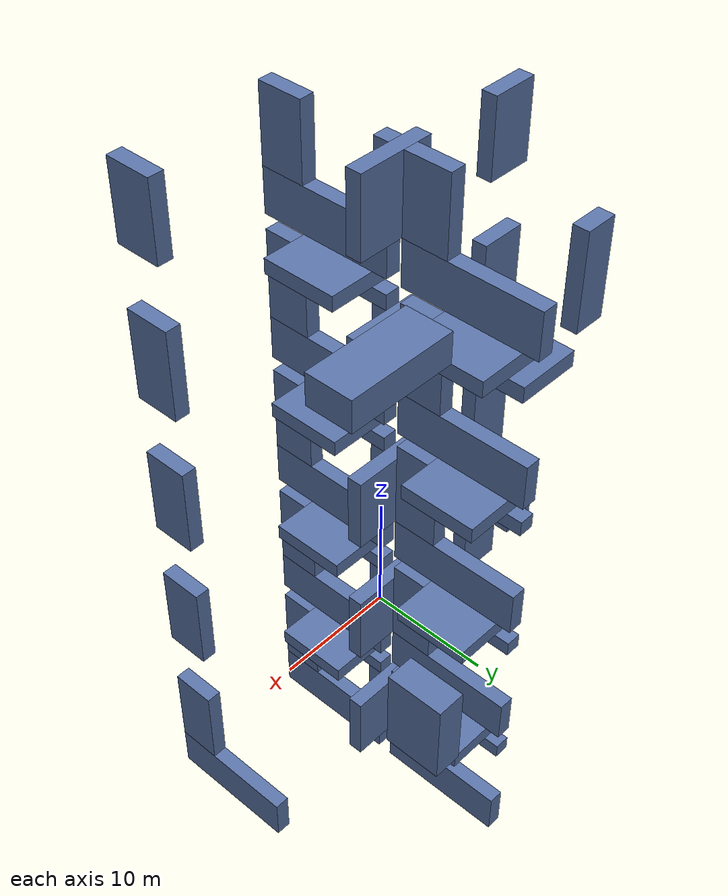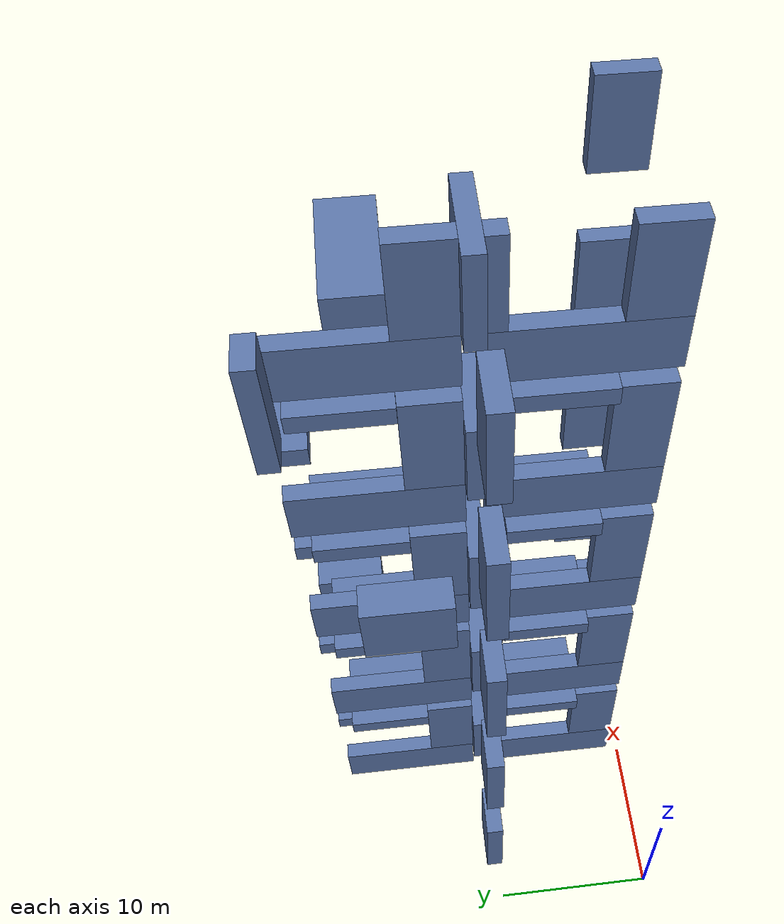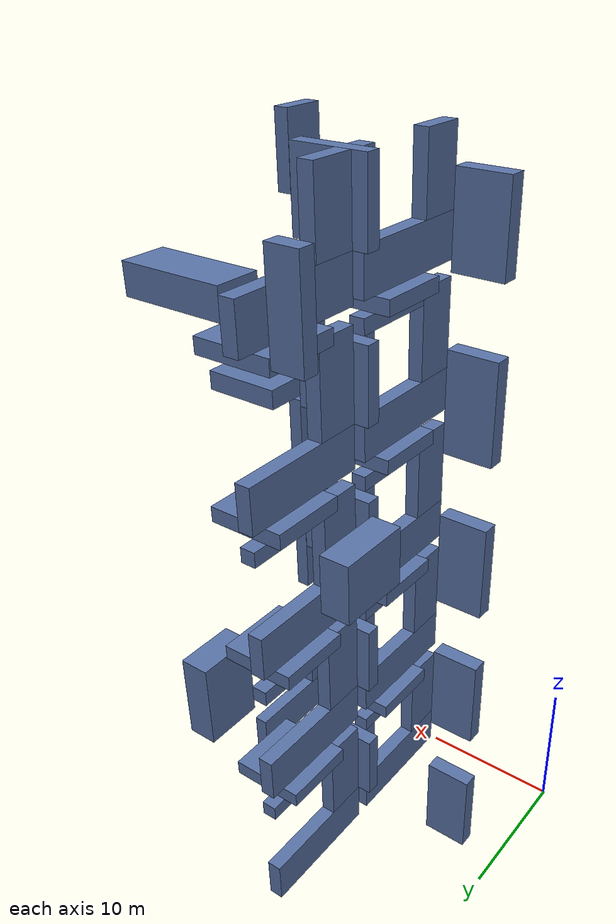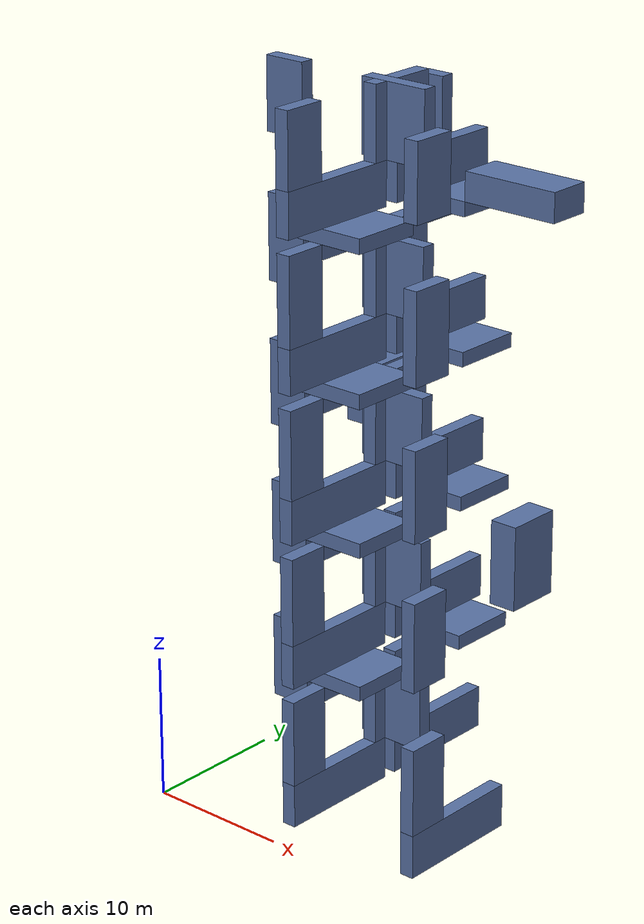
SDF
<sdf version="1.7">
 <world name="default">
  <model name="racer_env">
   <static>1</static>
   <link name="b13">
    <pose>2.500 10.500 7.000 0 0 0</pose>
    <collision name="c"><geometry><box><size>3.000 1.000 6.000</size></box></geometry></collision>
    <visual name="v">
     <geometry><box><size>3.000 1.000 6.000</size></box></geometry>
     <material><ambient>0.30 0.38 0.55 1</ambient><diffuse>0.35 0.45 0.65 1</diffuse></material>
    </visual>
   </link>
   <link name="b15">
    <pose>2.500 10.500 17.000 0 0 0</pose>
    <collision name="c"><geometry><box><size>3.000 1.000 6.000</size></box></geometry></collision>
    <visual name="v">
     <geometry><box><size>3.000 1.000 6.000</size></box></geometry>
     <material><ambient>0.30 0.38 0.55 1</ambient><diffuse>0.35 0.45 0.65 1</diffuse></material>
    </visual>
   </link>
   <link name="b17">
    <pose>2.500 10.500 27.000 0 0 0</pose>
    <collision name="c"><geometry><box><size>3.000 1.000 6.000</size></box></geometry></collision>
    <visual name="v">
     <geometry><box><size>3.000 1.000 6.000</size></box></geometry>
     <material><ambient>0.30 0.38 0.55 1</ambient><diffuse>0.35 0.45 0.65 1</diffuse></material>
    </visual>
   </link>
   <link name="b19">
    <pose>2.500 10.500 37.000 0 0 0</pose>
    <collision name="c"><geometry><box><size>3.000 1.000 6.000</size></box></geometry></collision>
    <visual name="v">
     <geometry><box><size>3.000 1.000 6.000</size></box></geometry>
     <material><ambient>0.30 0.38 0.55 1</ambient><diffuse>0.35 0.45 0.65 1</diffuse></material>
    </visual>
   </link>
   <link name="b21">
    <pose>2.500 10.500 46.500 0 0 0</pose>
    <collision name="c"><geometry><box><size>3.000 1.000 5.000</size></box></geometry></collision>
    <visual name="v">
     <geometry><box><size>3.000 1.000 5.000</size></box></geometry>
     <material><ambient>0.30 0.38 0.55 1</ambient><diffuse>0.35 0.45 0.65 1</diffuse></material>
    </visual>
   </link>
   <link name="b96">
    <pose>7.000 14.500 27.000 0 0 0</pose>
    <collision name="c"><geometry><box><size>2.000 5.000 4.000</size></box></geometry></collision>
    <visual name="v">
     <geometry><box><size>2.000 5.000 4.000</size></box></geometry>
     <material><ambient>0.30 0.38 0.55 1</ambient><diffuse>0.35 0.45 0.65 1</diffuse></material>
    </visual>
   </link>
   <link name="b97">
    <pose>7.000 19.500 44.000 0 0 0</pose>
    <collision name="c"><geometry><box><size>2.000 1.000 6.000</size></box></geometry></collision>
    <visual name="v">
     <geometry><box><size>2.000 1.000 6.000</size></box></geometry>
     <material><ambient>0.30 0.38 0.55 1</ambient><diffuse>0.35 0.45 0.65 1</diffuse></material>
    </visual>
   </link>
   <link name="b104">
    <pose>10.000 19.000 39.500 0 0 0</pose>
    <collision name="c"><geometry><box><size>4.000 2.000 1.000</size></box></geometry></collision>
    <visual name="v">
     <geometry><box><size>4.000 2.000 1.000</size></box></geometry>
     <material><ambient>0.30 0.38 0.55 1</ambient><diffuse>0.35 0.45 0.65 1</diffuse></material>
    </visual>
   </link>
   <link name="b105">
    <pose>11.500 6.500 10.500 0 0 0</pose>
    <collision name="c"><geometry><box><size>5.000 5.000 1.000</size></box></geometry></collision>
    <visual name="v">
     <geometry><box><size>5.000 5.000 1.000</size></box></geometry>
     <material><ambient>0.30 0.38 0.55 1</ambient><diffuse>0.35 0.45 0.65 1</diffuse></material>
    </visual>
   </link>
   <link name="b106">
    <pose>11.500 6.500 20.500 0 0 0</pose>
    <collision name="c"><geometry><box><size>5.000 5.000 1.000</size></box></geometry></collision>
    <visual name="v">
     <geometry><box><size>5.000 5.000 1.000</size></box></geometry>
     <material><ambient>0.30 0.38 0.55 1</ambient><diffuse>0.35 0.45 0.65 1</diffuse></material>
    </visual>
   </link>
   <link name="b107">
    <pose>11.500 6.500 30.500 0 0 0</pose>
    <collision name="c"><geometry><box><size>5.000 5.000 1.000</size></box></geometry></collision>
    <visual name="v">
     <geometry><box><size>5.000 5.000 1.000</size></box></geometry>
     <material><ambient>0.30 0.38 0.55 1</ambient><diffuse>0.35 0.45 0.65 1</diffuse></material>
    </visual>
   </link>
   <link name="b108">
    <pose>11.500 6.500 40.500 0 0 0</pose>
    <collision name="c"><geometry><box><size>5.000 5.000 1.000</size></box></geometry></collision>
    <visual name="v">
     <geometry><box><size>5.000 5.000 1.000</size></box></geometry>
     <material><ambient>0.30 0.38 0.55 1</ambient><diffuse>0.35 0.45 0.65 1</diffuse></material>
    </visual>
   </link>
   <link name="b109">
    <pose>11.500 10.500 6.500 0 0 0</pose>
    <collision name="c"><geometry><box><size>5.000 1.000 5.000</size></box></geometry></collision>
    <visual name="v">
     <geometry><box><size>5.000 1.000 5.000</size></box></geometry>
     <material><ambient>0.30 0.38 0.55 1</ambient><diffuse>0.35 0.45 0.65 1</diffuse></material>
    </visual>
   </link>
   <link name="b110">
    <pose>11.500 10.500 16.500 0 0 0</pose>
    <collision name="c"><geometry><box><size>5.000 1.000 5.000</size></box></geometry></collision>
    <visual name="v">
     <geometry><box><size>5.000 1.000 5.000</size></box></geometry>
     <material><ambient>0.30 0.38 0.55 1</ambient><diffuse>0.35 0.45 0.65 1</diffuse></material>
    </visual>
   </link>
   <link name="b111">
    <pose>11.500 10.500 26.500 0 0 0</pose>
    <collision name="c"><geometry><box><size>5.000 1.000 5.000</size></box></geometry></collision>
    <visual name="v">
     <geometry><box><size>5.000 1.000 5.000</size></box></geometry>
     <material><ambient>0.30 0.38 0.55 1</ambient><diffuse>0.35 0.45 0.65 1</diffuse></material>
    </visual>
   </link>
   <link name="b112">
    <pose>11.500 10.500 36.500 0 0 0</pose>
    <collision name="c"><geometry><box><size>5.000 1.000 5.000</size></box></geometry></collision>
    <visual name="v">
     <geometry><box><size>5.000 1.000 5.000</size></box></geometry>
     <material><ambient>0.30 0.38 0.55 1</ambient><diffuse>0.35 0.45 0.65 1</diffuse></material>
    </visual>
   </link>
   <link name="b113">
    <pose>11.500 10.500 46.500 0 0 0</pose>
    <collision name="c"><geometry><box><size>5.000 1.000 5.000</size></box></geometry></collision>
    <visual name="v">
     <geometry><box><size>5.000 1.000 5.000</size></box></geometry>
     <material><ambient>0.30 0.38 0.55 1</ambient><diffuse>0.35 0.45 0.65 1</diffuse></material>
    </visual>
   </link>
   <link name="b114">
    <pose>11.500 16.500 10.500 0 0 0</pose>
    <collision name="c"><geometry><box><size>5.000 5.000 1.000</size></box></geometry></collision>
    <visual name="v">
     <geometry><box><size>5.000 5.000 1.000</size></box></geometry>
     <material><ambient>0.30 0.38 0.55 1</ambient><diffuse>0.35 0.45 0.65 1</diffuse></material>
    </visual>
   </link>
   <link name="b115">
    <pose>11.500 16.500 20.500 0 0 0</pose>
    <collision name="c"><geometry><box><size>5.000 5.000 1.000</size></box></geometry></collision>
    <visual name="v">
     <geometry><box><size>5.000 5.000 1.000</size></box></geometry>
     <material><ambient>0.30 0.38 0.55 1</ambient><diffuse>0.35 0.45 0.65 1</diffuse></material>
    </visual>
   </link>
   <link name="b116">
    <pose>11.500 16.500 30.500 0 0 0</pose>
    <collision name="c"><geometry><box><size>5.000 5.000 1.000</size></box></geometry></collision>
    <visual name="v">
     <geometry><box><size>5.000 5.000 1.000</size></box></geometry>
     <material><ambient>0.30 0.38 0.55 1</ambient><diffuse>0.35 0.45 0.65 1</diffuse></material>
    </visual>
   </link>
   <link name="b117">
    <pose>11.500 16.500 40.500 0 0 0</pose>
    <collision name="c"><geometry><box><size>5.000 5.000 1.000</size></box></geometry></collision>
    <visual name="v">
     <geometry><box><size>5.000 5.000 1.000</size></box></geometry>
     <material><ambient>0.30 0.38 0.55 1</ambient><diffuse>0.35 0.45 0.65 1</diffuse></material>
    </visual>
   </link>
   <link name="b145">
    <pose>10.500 5.500 2.500 0 0 0</pose>
    <collision name="c"><geometry><box><size>1.000 9.000 3.000</size></box></geometry></collision>
    <visual name="v">
     <geometry><box><size>1.000 9.000 3.000</size></box></geometry>
     <material><ambient>0.30 0.38 0.55 1</ambient><diffuse>0.35 0.45 0.65 1</diffuse></material>
    </visual>
   </link>
   <link name="b146">
    <pose>10.500 2.500 7.000 0 0 0</pose>
    <collision name="c"><geometry><box><size>1.000 3.000 6.000</size></box></geometry></collision>
    <visual name="v">
     <geometry><box><size>1.000 3.000 6.000</size></box></geometry>
     <material><ambient>0.30 0.38 0.55 1</ambient><diffuse>0.35 0.45 0.65 1</diffuse></material>
    </visual>
   </link>
   <link name="b147">
    <pose>10.500 5.500 12.500 0 0 0</pose>
    <collision name="c"><geometry><box><size>1.000 9.000 3.000</size></box></geometry></collision>
    <visual name="v">
     <geometry><box><size>1.000 9.000 3.000</size></box></geometry>
     <material><ambient>0.30 0.38 0.55 1</ambient><diffuse>0.35 0.45 0.65 1</diffuse></material>
    </visual>
   </link>
   <link name="b148">
    <pose>10.500 2.500 17.000 0 0 0</pose>
    <collision name="c"><geometry><box><size>1.000 3.000 6.000</size></box></geometry></collision>
    <visual name="v">
     <geometry><box><size>1.000 3.000 6.000</size></box></geometry>
     <material><ambient>0.30 0.38 0.55 1</ambient><diffuse>0.35 0.45 0.65 1</diffuse></material>
    </visual>
   </link>
   <link name="b149">
    <pose>10.500 5.500 22.500 0 0 0</pose>
    <collision name="c"><geometry><box><size>1.000 9.000 3.000</size></box></geometry></collision>
    <visual name="v">
     <geometry><box><size>1.000 9.000 3.000</size></box></geometry>
     <material><ambient>0.30 0.38 0.55 1</ambient><diffuse>0.35 0.45 0.65 1</diffuse></material>
    </visual>
   </link>
   <link name="b150">
    <pose>10.500 2.500 27.000 0 0 0</pose>
    <collision name="c"><geometry><box><size>1.000 3.000 6.000</size></box></geometry></collision>
    <visual name="v">
     <geometry><box><size>1.000 3.000 6.000</size></box></geometry>
     <material><ambient>0.30 0.38 0.55 1</ambient><diffuse>0.35 0.45 0.65 1</diffuse></material>
    </visual>
   </link>
   <link name="b151">
    <pose>10.500 5.500 32.500 0 0 0</pose>
    <collision name="c"><geometry><box><size>1.000 9.000 3.000</size></box></geometry></collision>
    <visual name="v">
     <geometry><box><size>1.000 9.000 3.000</size></box></geometry>
     <material><ambient>0.30 0.38 0.55 1</ambient><diffuse>0.35 0.45 0.65 1</diffuse></material>
    </visual>
   </link>
   <link name="b152">
    <pose>10.500 2.500 37.000 0 0 0</pose>
    <collision name="c"><geometry><box><size>1.000 3.000 6.000</size></box></geometry></collision>
    <visual name="v">
     <geometry><box><size>1.000 3.000 6.000</size></box></geometry>
     <material><ambient>0.30 0.38 0.55 1</ambient><diffuse>0.35 0.45 0.65 1</diffuse></material>
    </visual>
   </link>
   <link name="b153">
    <pose>10.500 5.500 42.500 0 0 0</pose>
    <collision name="c"><geometry><box><size>1.000 9.000 3.000</size></box></geometry></collision>
    <visual name="v">
     <geometry><box><size>1.000 9.000 3.000</size></box></geometry>
     <material><ambient>0.30 0.38 0.55 1</ambient><diffuse>0.35 0.45 0.65 1</diffuse></material>
    </visual>
   </link>
   <link name="b154">
    <pose>10.500 2.500 46.500 0 0 0</pose>
    <collision name="c"><geometry><box><size>1.000 3.000 5.000</size></box></geometry></collision>
    <visual name="v">
     <geometry><box><size>1.000 3.000 5.000</size></box></geometry>
     <material><ambient>0.30 0.38 0.55 1</ambient><diffuse>0.35 0.45 0.65 1</diffuse></material>
    </visual>
   </link>
   <link name="b155">
    <pose>10.500 7.000 9.500 0 0 0</pose>
    <collision name="c"><geometry><box><size>1.000 6.000 1.000</size></box></geometry></collision>
    <visual name="v">
     <geometry><box><size>1.000 6.000 1.000</size></box></geometry>
     <material><ambient>0.30 0.38 0.55 1</ambient><diffuse>0.35 0.45 0.65 1</diffuse></material>
    </visual>
   </link>
   <link name="b156">
    <pose>10.500 7.000 19.500 0 0 0</pose>
    <collision name="c"><geometry><box><size>1.000 6.000 1.000</size></box></geometry></collision>
    <visual name="v">
     <geometry><box><size>1.000 6.000 1.000</size></box></geometry>
     <material><ambient>0.30 0.38 0.55 1</ambient><diffuse>0.35 0.45 0.65 1</diffuse></material>
    </visual>
   </link>
   <link name="b157">
    <pose>10.500 7.000 29.500 0 0 0</pose>
    <collision name="c"><geometry><box><size>1.000 6.000 1.000</size></box></geometry></collision>
    <visual name="v">
     <geometry><box><size>1.000 6.000 1.000</size></box></geometry>
     <material><ambient>0.30 0.38 0.55 1</ambient><diffuse>0.35 0.45 0.65 1</diffuse></material>
    </visual>
   </link>
   <link name="b158">
    <pose>10.500 7.000 39.500 0 0 0</pose>
    <collision name="c"><geometry><box><size>1.000 6.000 1.000</size></box></geometry></collision>
    <visual name="v">
     <geometry><box><size>1.000 6.000 1.000</size></box></geometry>
     <material><ambient>0.30 0.38 0.55 1</ambient><diffuse>0.35 0.45 0.65 1</diffuse></material>
    </visual>
   </link>
   <link name="b159">
    <pose>10.500 9.500 6.500 0 0 0</pose>
    <collision name="c"><geometry><box><size>1.000 1.000 5.000</size></box></geometry></collision>
    <visual name="v">
     <geometry><box><size>1.000 1.000 5.000</size></box></geometry>
     <material><ambient>0.30 0.38 0.55 1</ambient><diffuse>0.35 0.45 0.65 1</diffuse></material>
    </visual>
   </link>
   <link name="b160">
    <pose>10.500 9.500 16.500 0 0 0</pose>
    <collision name="c"><geometry><box><size>1.000 1.000 5.000</size></box></geometry></collision>
    <visual name="v">
     <geometry><box><size>1.000 1.000 5.000</size></box></geometry>
     <material><ambient>0.30 0.38 0.55 1</ambient><diffuse>0.35 0.45 0.65 1</diffuse></material>
    </visual>
   </link>
   <link name="b161">
    <pose>10.500 9.500 26.500 0 0 0</pose>
    <collision name="c"><geometry><box><size>1.000 1.000 5.000</size></box></geometry></collision>
    <visual name="v">
     <geometry><box><size>1.000 1.000 5.000</size></box></geometry>
     <material><ambient>0.30 0.38 0.55 1</ambient><diffuse>0.35 0.45 0.65 1</diffuse></material>
    </visual>
   </link>
   <link name="b162">
    <pose>10.500 9.500 36.500 0 0 0</pose>
    <collision name="c"><geometry><box><size>1.000 1.000 5.000</size></box></geometry></collision>
    <visual name="v">
     <geometry><box><size>1.000 1.000 5.000</size></box></geometry>
     <material><ambient>0.30 0.38 0.55 1</ambient><diffuse>0.35 0.45 0.65 1</diffuse></material>
    </visual>
   </link>
   <link name="b163">
    <pose>10.500 9.500 46.500 0 0 0</pose>
    <collision name="c"><geometry><box><size>1.000 1.000 5.000</size></box></geometry></collision>
    <visual name="v">
     <geometry><box><size>1.000 1.000 5.000</size></box></geometry>
     <material><ambient>0.30 0.38 0.55 1</ambient><diffuse>0.35 0.45 0.65 1</diffuse></material>
    </visual>
   </link>
   <link name="b164">
    <pose>10.500 15.500 2.500 0 0 0</pose>
    <collision name="c"><geometry><box><size>1.000 9.000 3.000</size></box></geometry></collision>
    <visual name="v">
     <geometry><box><size>1.000 9.000 3.000</size></box></geometry>
     <material><ambient>0.30 0.38 0.55 1</ambient><diffuse>0.35 0.45 0.65 1</diffuse></material>
    </visual>
   </link>
   <link name="b165">
    <pose>10.500 12.500 7.000 0 0 0</pose>
    <collision name="c"><geometry><box><size>1.000 3.000 6.000</size></box></geometry></collision>
    <visual name="v">
     <geometry><box><size>1.000 3.000 6.000</size></box></geometry>
     <material><ambient>0.30 0.38 0.55 1</ambient><diffuse>0.35 0.45 0.65 1</diffuse></material>
    </visual>
   </link>
   <link name="b166">
    <pose>10.500 15.500 12.500 0 0 0</pose>
    <collision name="c"><geometry><box><size>1.000 9.000 3.000</size></box></geometry></collision>
    <visual name="v">
     <geometry><box><size>1.000 9.000 3.000</size></box></geometry>
     <material><ambient>0.30 0.38 0.55 1</ambient><diffuse>0.35 0.45 0.65 1</diffuse></material>
    </visual>
   </link>
   <link name="b167">
    <pose>10.500 12.500 17.000 0 0 0</pose>
    <collision name="c"><geometry><box><size>1.000 3.000 6.000</size></box></geometry></collision>
    <visual name="v">
     <geometry><box><size>1.000 3.000 6.000</size></box></geometry>
     <material><ambient>0.30 0.38 0.55 1</ambient><diffuse>0.35 0.45 0.65 1</diffuse></material>
    </visual>
   </link>
   <link name="b168">
    <pose>10.500 15.500 22.500 0 0 0</pose>
    <collision name="c"><geometry><box><size>1.000 9.000 3.000</size></box></geometry></collision>
    <visual name="v">
     <geometry><box><size>1.000 9.000 3.000</size></box></geometry>
     <material><ambient>0.30 0.38 0.55 1</ambient><diffuse>0.35 0.45 0.65 1</diffuse></material>
    </visual>
   </link>
   <link name="b169">
    <pose>10.500 12.500 27.000 0 0 0</pose>
    <collision name="c"><geometry><box><size>1.000 3.000 6.000</size></box></geometry></collision>
    <visual name="v">
     <geometry><box><size>1.000 3.000 6.000</size></box></geometry>
     <material><ambient>0.30 0.38 0.55 1</ambient><diffuse>0.35 0.45 0.65 1</diffuse></material>
    </visual>
   </link>
   <link name="b170">
    <pose>10.500 15.500 32.500 0 0 0</pose>
    <collision name="c"><geometry><box><size>1.000 9.000 3.000</size></box></geometry></collision>
    <visual name="v">
     <geometry><box><size>1.000 9.000 3.000</size></box></geometry>
     <material><ambient>0.30 0.38 0.55 1</ambient><diffuse>0.35 0.45 0.65 1</diffuse></material>
    </visual>
   </link>
   <link name="b171">
    <pose>10.500 12.500 37.000 0 0 0</pose>
    <collision name="c"><geometry><box><size>1.000 3.000 6.000</size></box></geometry></collision>
    <visual name="v">
     <geometry><box><size>1.000 3.000 6.000</size></box></geometry>
     <material><ambient>0.30 0.38 0.55 1</ambient><diffuse>0.35 0.45 0.65 1</diffuse></material>
    </visual>
   </link>
   <link name="b172">
    <pose>10.500 15.500 42.500 0 0 0</pose>
    <collision name="c"><geometry><box><size>1.000 9.000 3.000</size></box></geometry></collision>
    <visual name="v">
     <geometry><box><size>1.000 9.000 3.000</size></box></geometry>
     <material><ambient>0.30 0.38 0.55 1</ambient><diffuse>0.35 0.45 0.65 1</diffuse></material>
    </visual>
   </link>
   <link name="b173">
    <pose>10.500 12.500 46.500 0 0 0</pose>
    <collision name="c"><geometry><box><size>1.000 3.000 5.000</size></box></geometry></collision>
    <visual name="v">
     <geometry><box><size>1.000 3.000 5.000</size></box></geometry>
     <material><ambient>0.30 0.38 0.55 1</ambient><diffuse>0.35 0.45 0.65 1</diffuse></material>
    </visual>
   </link>
   <link name="b174">
    <pose>10.500 17.000 9.500 0 0 0</pose>
    <collision name="c"><geometry><box><size>1.000 6.000 1.000</size></box></geometry></collision>
    <visual name="v">
     <geometry><box><size>1.000 6.000 1.000</size></box></geometry>
     <material><ambient>0.30 0.38 0.55 1</ambient><diffuse>0.35 0.45 0.65 1</diffuse></material>
    </visual>
   </link>
   <link name="b175">
    <pose>10.500 17.000 19.500 0 0 0</pose>
    <collision name="c"><geometry><box><size>1.000 6.000 1.000</size></box></geometry></collision>
    <visual name="v">
     <geometry><box><size>1.000 6.000 1.000</size></box></geometry>
     <material><ambient>0.30 0.38 0.55 1</ambient><diffuse>0.35 0.45 0.65 1</diffuse></material>
    </visual>
   </link>
   <link name="b176">
    <pose>10.500 17.000 29.500 0 0 0</pose>
    <collision name="c"><geometry><box><size>1.000 6.000 1.000</size></box></geometry></collision>
    <visual name="v">
     <geometry><box><size>1.000 6.000 1.000</size></box></geometry>
     <material><ambient>0.30 0.38 0.55 1</ambient><diffuse>0.35 0.45 0.65 1</diffuse></material>
    </visual>
   </link>
   <link name="b177">
    <pose>10.500 16.000 39.500 0 0 0</pose>
    <collision name="c"><geometry><box><size>1.000 4.000 1.000</size></box></geometry></collision>
    <visual name="v">
     <geometry><box><size>1.000 4.000 1.000</size></box></geometry>
     <material><ambient>0.30 0.38 0.55 1</ambient><diffuse>0.35 0.45 0.65 1</diffuse></material>
    </visual>
   </link>
   <link name="b240">
    <pose>17.500 15.500 42.000 0 0 0</pose>
    <collision name="c"><geometry><box><size>7.000 3.000 2.000</size></box></geometry></collision>
    <visual name="v">
     <geometry><box><size>7.000 3.000 2.000</size></box></geometry>
     <material><ambient>0.30 0.38 0.55 1</ambient><diffuse>0.35 0.45 0.65 1</diffuse></material>
    </visual>
   </link>
   <link name="b242">
    <pose>16.000 18.000 16.000 0 0 0</pose>
    <collision name="c"><geometry><box><size>2.000 4.000 6.000</size></box></geometry></collision>
    <visual name="v">
     <geometry><box><size>2.000 4.000 6.000</size></box></geometry>
     <material><ambient>0.30 0.38 0.55 1</ambient><diffuse>0.35 0.45 0.65 1</diffuse></material>
    </visual>
   </link>
   <link name="b287">
    <pose>20.500 5.500 2.500 0 0 0</pose>
    <collision name="c"><geometry><box><size>1.000 9.000 3.000</size></box></geometry></collision>
    <visual name="v">
     <geometry><box><size>1.000 9.000 3.000</size></box></geometry>
     <material><ambient>0.30 0.38 0.55 1</ambient><diffuse>0.35 0.45 0.65 1</diffuse></material>
    </visual>
   </link>
   <link name="b288">
    <pose>20.500 2.500 7.000 0 0 0</pose>
    <collision name="c"><geometry><box><size>1.000 3.000 6.000</size></box></geometry></collision>
    <visual name="v">
     <geometry><box><size>1.000 3.000 6.000</size></box></geometry>
     <material><ambient>0.30 0.38 0.55 1</ambient><diffuse>0.35 0.45 0.65 1</diffuse></material>
    </visual>
   </link>
   <link name="b290">
    <pose>20.500 2.500 17.000 0 0 0</pose>
    <collision name="c"><geometry><box><size>1.000 3.000 6.000</size></box></geometry></collision>
    <visual name="v">
     <geometry><box><size>1.000 3.000 6.000</size></box></geometry>
     <material><ambient>0.30 0.38 0.55 1</ambient><diffuse>0.35 0.45 0.65 1</diffuse></material>
    </visual>
   </link>
   <link name="b292">
    <pose>20.500 2.500 27.000 0 0 0</pose>
    <collision name="c"><geometry><box><size>1.000 3.000 6.000</size></box></geometry></collision>
    <visual name="v">
     <geometry><box><size>1.000 3.000 6.000</size></box></geometry>
     <material><ambient>0.30 0.38 0.55 1</ambient><diffuse>0.35 0.45 0.65 1</diffuse></material>
    </visual>
   </link>
   <link name="b294">
    <pose>20.500 2.500 37.000 0 0 0</pose>
    <collision name="c"><geometry><box><size>1.000 3.000 6.000</size></box></geometry></collision>
    <visual name="v">
     <geometry><box><size>1.000 3.000 6.000</size></box></geometry>
     <material><ambient>0.30 0.38 0.55 1</ambient><diffuse>0.35 0.45 0.65 1</diffuse></material>
    </visual>
   </link>
   <link name="b296">
    <pose>20.500 2.500 46.500 0 0 0</pose>
    <collision name="c"><geometry><box><size>1.000 3.000 5.000</size></box></geometry></collision>
    <visual name="v">
     <geometry><box><size>1.000 3.000 5.000</size></box></geometry>
     <material><ambient>0.30 0.38 0.55 1</ambient><diffuse>0.35 0.45 0.65 1</diffuse></material>
    </visual>
   </link>
  </model>
 </world>
</sdf>
